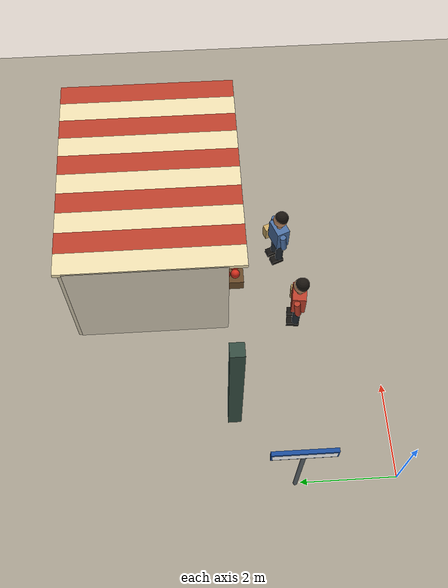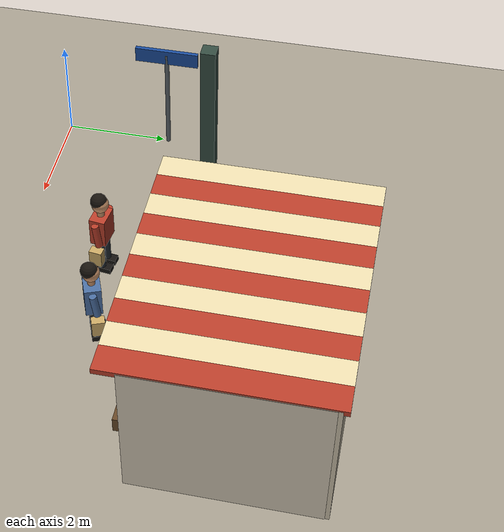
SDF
<sdf version="1.10">
 <world name="swan_market">
  <model name="ground">
   <static>true</static>
   <pose>15 0 -0.1 0 0 0</pose>
   <link name="body">
    <collision name="box_collision"><geometry><box><size>46 24 0.2</size></box></geometry></collision>
    <visual name="box_visual">
     <geometry><box><size>46 24 0.2</size></box></geometry>
     <material><ambient>0.64 0.61 0.55 1</ambient><diffuse>0.64 0.61 0.55 1</diffuse></material>
    </visual>
   </link>
  </model>
  <model name="crosswalk_sign_pole">
   <static>true</static>
   <pose>0 2.1 0 0 0 0</pose>
   <link name="body">
    <collision name="post_collision">
     <pose>0 0 1.1 0 0 0</pose>
     <geometry><cylinder><radius>0.045</radius><length>2.2</length></cylinder></geometry>
    </collision>
    <visual name="post_visual">
     <pose>0 0 1.1 0 0 0</pose>
     <geometry><cylinder><radius>0.045</radius><length>2.2</length></cylinder></geometry>
     <material><ambient>0.35 0.38 0.4 1</ambient><diffuse>0.35 0.38 0.4 1</diffuse></material>
    </visual>
   </link>
  </model>
  <model name="crosswalk_sign_back">
   <static>true</static>
   <pose>0 2.1 2.15 0 0 0</pose>
   <link name="body">
    <collision name="box_collision"><geometry><box><size>0.08 1.25 0.3</size></box></geometry></collision>
    <visual name="box_visual">
     <geometry><box><size>0.08 1.25 0.3</size></box></geometry>
     <material><ambient>0.1 0.29 0.6 1</ambient><diffuse>0.1 0.29 0.6 1</diffuse></material>
    </visual>
   </link>
  </model>
  <model name="sign_crosswalk">
   <static>true</static>
   <pose>-0.048 2.1 2.15 0 0 -1.5708</pose>
   <link name="body">
    <visual name="lettering">
     <geometry>
      <mesh>
       <uri>model://swan_market_assets/meshes/crosswalk.dae</uri>
       <scale>1.2 1 0.22499999999999998</scale>
      </mesh>
     </geometry>
     <material>
      <ambient>1 1 1 1</ambient>
      <diffuse>1 1 1 1</diffuse>
      <emissive>0 0 0 1</emissive>
      <pbr>
       <metal>
        <albedo_map>model://swan_market_assets/materials/textures/crosswalk.png</albedo_map>
        <metalness>0</metalness>
        <roughness>1</roughness>
       </metal>
      </pbr>
     </material>
    </visual>
   </link>
  </model>
  <model name="entrance_post_1">
   <static>true</static>
   <pose>1.5 3.25 1.8 0 0 0</pose>
   <link name="body">
    <collision name="box_collision"><geometry><box><size>0.28 0.28 3.6</size></box></geometry></collision>
    <visual name="box_visual">
     <geometry><box><size>0.28 0.28 3.6</size></box></geometry>
     <material><ambient>0.2 0.29 0.25 1</ambient><diffuse>0.2 0.29 0.25 1</diffuse></material>
    </visual>
   </link>
  </model>
  <model name="stall_00">
   <static>true</static>
   <pose>6 4.8968 0 0 0 0</pose>
   <link name="body">
    <collision name="rear_collision">
     <pose>0 1.65 1.4 0 0 0</pose>
     <geometry><box><size>4.8 0.15 2.8</size></box></geometry>
    </collision>
    <visual name="rear_visual">
     <pose>0 1.65 1.4 0 0 0</pose>
     <geometry><box><size>4.8 0.15 2.8</size></box></geometry>
     <material><ambient>0.78 0.74 0.65 1</ambient><diffuse>0.78 0.74 0.65 1</diffuse></material>
    </visual>
    <collision name="side_-2.35_collision">
     <pose>-2.35 0 1.4 0 0 0</pose>
     <geometry><box><size>0.12 3.3 2.8</size></box></geometry>
    </collision>
    <visual name="side_-2.35_visual">
     <pose>-2.35 0 1.4 0 0 0</pose>
     <geometry><box><size>0.12 3.3 2.8</size></box></geometry>
     <material><ambient>0.81 0.77 0.69 1</ambient><diffuse>0.81 0.77 0.69 1</diffuse></material>
    </visual>
    <collision name="side_2.35_collision">
     <pose>2.35 0 1.4 0 0 0</pose>
     <geometry><box><size>0.12 3.3 2.8</size></box></geometry>
    </collision>
    <visual name="side_2.35_visual">
     <pose>2.35 0 1.4 0 0 0</pose>
     <geometry><box><size>0.12 3.3 2.8</size></box></geometry>
     <material><ambient>0.81 0.77 0.69 1</ambient><diffuse>0.81 0.77 0.69 1</diffuse></material>
    </visual>
    <collision name="counter_collision">
     <pose>0 -1.22 0.4 0 0 0</pose>
     <geometry><box><size>3.5 0.85 0.8</size></box></geometry>
    </collision>
    <visual name="counter_visual">
     <pose>0 -1.22 0.4 0 0 0</pose>
     <geometry><box><size>3.5 0.85 0.8</size></box></geometry>
     <material><ambient>0.47 0.32 0.21 1</ambient><diffuse>0.47 0.32 0.21 1</diffuse></material>
    </visual>
    <collision name="counter_top_collision">
     <pose>0 -1.22 0.83 0 0 0</pose>
     <geometry><box><size>3.6 0.95 0.06</size></box></geometry>
    </collision>
    <visual name="counter_top_visual">
     <pose>0 -1.22 0.83 0 0 0</pose>
     <geometry><box><size>3.6 0.95 0.06</size></box></geometry>
     <material><ambient>0.86 0.77 0.59 1</ambient><diffuse>0.86 0.77 0.59 1</diffuse></material>
    </visual>
    <collision name="awning_0_collision">
     <pose>-2.16 -0.1 2.78 0 0 0</pose>
     <geometry><box><size>0.48 3.85 0.1</size></box></geometry>
    </collision>
    <visual name="awning_0_visual">
     <pose>-2.16 -0.1 2.78 0 0 0</pose>
     <geometry><box><size>0.48 3.85 0.1</size></box></geometry>
     <material><ambient>0.92 0.86 0.68 1</ambient><diffuse>0.92 0.86 0.68 1</diffuse></material>
    </visual>
    <collision name="awning_1_collision">
     <pose>-1.68 -0.1 2.78 0 0 0</pose>
     <geometry><box><size>0.48 3.85 0.1</size></box></geometry>
    </collision>
    <visual name="awning_1_visual">
     <pose>-1.68 -0.1 2.78 0 0 0</pose>
     <geometry><box><size>0.48 3.85 0.1</size></box></geometry>
     <material><ambient>0.72 0.24 0.16 1</ambient><diffuse>0.72 0.24 0.16 1</diffuse></material>
    </visual>
    <collision name="awning_2_collision">
     <pose>-1.2 -0.1 2.78 0 0 0</pose>
     <geometry><box><size>0.48 3.85 0.1</size></box></geometry>
    </collision>
    <visual name="awning_2_visual">
     <pose>-1.2 -0.1 2.78 0 0 0</pose>
     <geometry><box><size>0.48 3.85 0.1</size></box></geometry>
     <material><ambient>0.92 0.86 0.68 1</ambient><diffuse>0.92 0.86 0.68 1</diffuse></material>
    </visual>
    <collision name="awning_3_collision">
     <pose>-0.72 -0.1 2.78 0 0 0</pose>
     <geometry><box><size>0.48 3.85 0.1</size></box></geometry>
    </collision>
    <visual name="awning_3_visual">
     <pose>-0.72 -0.1 2.78 0 0 0</pose>
     <geometry><box><size>0.48 3.85 0.1</size></box></geometry>
     <material><ambient>0.72 0.24 0.16 1</ambient><diffuse>0.72 0.24 0.16 1</diffuse></material>
    </visual>
    <collision name="awning_4_collision">
     <pose>-0.24 -0.1 2.78 0 0 0</pose>
     <geometry><box><size>0.48 3.85 0.1</size></box></geometry>
    </collision>
    <visual name="awning_4_visual">
     <pose>-0.24 -0.1 2.78 0 0 0</pose>
     <geometry><box><size>0.48 3.85 0.1</size></box></geometry>
     <material><ambient>0.92 0.86 0.68 1</ambient><diffuse>0.92 0.86 0.68 1</diffuse></material>
    </visual>
    <collision name="awning_5_collision">
     <pose>0.24 -0.1 2.78 0 0 0</pose>
     <geometry><box><size>0.48 3.85 0.1</size></box></geometry>
    </collision>
    <visual name="awning_5_visual">
     <pose>0.24 -0.1 2.78 0 0 0</pose>
     <geometry><box><size>0.48 3.85 0.1</size></box></geometry>
     <material><ambient>0.72 0.24 0.16 1</ambient><diffuse>0.72 0.24 0.16 1</diffuse></material>
    </visual>
    <collision name="awning_6_collision">
     <pose>0.72 -0.1 2.78 0 0 0</pose>
     <geometry><box><size>0.48 3.85 0.1</size></box></geometry>
    </collision>
    <visual name="awning_6_visual">
     <pose>0.72 -0.1 2.78 0 0 0</pose>
     <geometry><box><size>0.48 3.85 0.1</size></box></geometry>
     <material><ambient>0.92 0.86 0.68 1</ambient><diffuse>0.92 0.86 0.68 1</diffuse></material>
    </visual>
    <collision name="awning_7_collision">
     <pose>1.2 -0.1 2.78 0 0 0</pose>
     <geometry><box><size>0.48 3.85 0.1</size></box></geometry>
    </collision>
    <visual name="awning_7_visual">
     <pose>1.2 -0.1 2.78 0 0 0</pose>
     <geometry><box><size>0.48 3.85 0.1</size></box></geometry>
     <material><ambient>0.72 0.24 0.16 1</ambient><diffuse>0.72 0.24 0.16 1</diffuse></material>
    </visual>
    <collision name="awning_8_collision">
     <pose>1.68 -0.1 2.78 0 0 0</pose>
     <geometry><box><size>0.48 3.85 0.1</size></box></geometry>
    </collision>
    <visual name="awning_8_visual">
     <pose>1.68 -0.1 2.78 0 0 0</pose>
     <geometry><box><size>0.48 3.85 0.1</size></box></geometry>
     <material><ambient>0.92 0.86 0.68 1</ambient><diffuse>0.92 0.86 0.68 1</diffuse></material>
    </visual>
    <collision name="awning_9_collision">
     <pose>2.16 -0.1 2.78 0 0 0</pose>
     <geometry><box><size>0.48 3.85 0.1</size></box></geometry>
    </collision>
    <visual name="awning_9_visual">
     <pose>2.16 -0.1 2.78 0 0 0</pose>
     <geometry><box><size>0.48 3.85 0.1</size></box></geometry>
     <material><ambient>0.72 0.24 0.16 1</ambient><diffuse>0.72 0.24 0.16 1</diffuse></material>
    </visual>
    <collision name="crate_-1_collision">
     <pose>-1.04 -1.77 0.15 0 0 0</pose>
     <geometry><box><size>0.78 0.6 0.3</size></box></geometry>
    </collision>
    <visual name="crate_-1_visual">
     <pose>-1.04 -1.77 0.15 0 0 0</pose>
     <geometry><box><size>0.78 0.6 0.3</size></box></geometry>
     <material><ambient>0.4 0.28 0.15 1</ambient><diffuse>0.4 0.28 0.15 1</diffuse></material>
    </visual>
    <visual name="produce_-1_0_visual">
     <pose>-1.25 -1.88 0.39 0 0 0</pose>
     <geometry><sphere><radius>0.105</radius></sphere></geometry>
     <material><ambient>0.84 0.18 0.11 1</ambient><diffuse>0.84 0.18 0.11 1</diffuse></material>
    </visual>
    <visual name="produce_-1_1_visual">
     <pose>-1.04 -1.88 0.39 0 0 0</pose>
     <geometry><sphere><radius>0.105</radius></sphere></geometry>
     <material><ambient>0.84 0.18 0.11 1</ambient><diffuse>0.84 0.18 0.11 1</diffuse></material>
    </visual>
    <visual name="produce_-1_2_visual">
     <pose>-0.83 -1.88 0.39 0 0 0</pose>
     <geometry><sphere><radius>0.105</radius></sphere></geometry>
     <material><ambient>0.84 0.18 0.11 1</ambient><diffuse>0.84 0.18 0.11 1</diffuse></material>
    </visual>
    <visual name="produce_-1_3_visual">
     <pose>-1.25 -1.66 0.39 0 0 0</pose>
     <geometry><sphere><radius>0.105</radius></sphere></geometry>
     <material><ambient>0.84 0.18 0.11 1</ambient><diffuse>0.84 0.18 0.11 1</diffuse></material>
    </visual>
    <visual name="produce_-1_4_visual">
     <pose>-1.04 -1.66 0.39 0 0 0</pose>
     <geometry><sphere><radius>0.105</radius></sphere></geometry>
     <material><ambient>0.84 0.18 0.11 1</ambient><diffuse>0.84 0.18 0.11 1</diffuse></material>
    </visual>
    <visual name="produce_-1_5_visual">
     <pose>-0.83 -1.66 0.39 0 0 0</pose>
     <geometry><sphere><radius>0.105</radius></sphere></geometry>
     <material><ambient>0.84 0.18 0.11 1</ambient><diffuse>0.84 0.18 0.11 1</diffuse></material>
    </visual>
    <collision name="crate_0_collision">
     <pose>0 -1.77 0.15 0 0 0</pose>
     <geometry><box><size>0.78 0.6 0.3</size></box></geometry>
    </collision>
    <visual name="crate_0_visual">
     <pose>0 -1.77 0.15 0 0 0</pose>
     <geometry><box><size>0.78 0.6 0.3</size></box></geometry>
     <material><ambient>0.4 0.28 0.15 1</ambient><diffuse>0.4 0.28 0.15 1</diffuse></material>
    </visual>
    <visual name="produce_0_0_visual">
     <pose>-0.21 -1.88 0.39 0 0 0</pose>
     <geometry><sphere><radius>0.105</radius></sphere></geometry>
     <material><ambient>0.84 0.18 0.11 1</ambient><diffuse>0.84 0.18 0.11 1</diffuse></material>
    </visual>
    <visual name="produce_0_1_visual">
     <pose>0 -1.88 0.39 0 0 0</pose>
     <geometry><sphere><radius>0.105</radius></sphere></geometry>
     <material><ambient>0.84 0.18 0.11 1</ambient><diffuse>0.84 0.18 0.11 1</diffuse></material>
    </visual>
    <visual name="produce_0_2_visual">
     <pose>0.21 -1.88 0.39 0 0 0</pose>
     <geometry><sphere><radius>0.105</radius></sphere></geometry>
     <material><ambient>0.84 0.18 0.11 1</ambient><diffuse>0.84 0.18 0.11 1</diffuse></material>
    </visual>
    <visual name="produce_0_3_visual">
     <pose>-0.21 -1.66 0.39 0 0 0</pose>
     <geometry><sphere><radius>0.105</radius></sphere></geometry>
     <material><ambient>0.84 0.18 0.11 1</ambient><diffuse>0.84 0.18 0.11 1</diffuse></material>
    </visual>
    <visual name="produce_0_4_visual">
     <pose>0 -1.66 0.39 0 0 0</pose>
     <geometry><sphere><radius>0.105</radius></sphere></geometry>
     <material><ambient>0.84 0.18 0.11 1</ambient><diffuse>0.84 0.18 0.11 1</diffuse></material>
    </visual>
    <visual name="produce_0_5_visual">
     <pose>0.21 -1.66 0.39 0 0 0</pose>
     <geometry><sphere><radius>0.105</radius></sphere></geometry>
     <material><ambient>0.84 0.18 0.11 1</ambient><diffuse>0.84 0.18 0.11 1</diffuse></material>
    </visual>
    <collision name="crate_1_collision">
     <pose>1.04 -1.77 0.15 0 0 0</pose>
     <geometry><box><size>0.78 0.6 0.3</size></box></geometry>
    </collision>
    <visual name="crate_1_visual">
     <pose>1.04 -1.77 0.15 0 0 0</pose>
     <geometry><box><size>0.78 0.6 0.3</size></box></geometry>
     <material><ambient>0.4 0.28 0.15 1</ambient><diffuse>0.4 0.28 0.15 1</diffuse></material>
    </visual>
    <visual name="produce_1_0_visual">
     <pose>0.83 -1.88 0.39 0 0 0</pose>
     <geometry><sphere><radius>0.105</radius></sphere></geometry>
     <material><ambient>0.84 0.18 0.11 1</ambient><diffuse>0.84 0.18 0.11 1</diffuse></material>
    </visual>
    <visual name="produce_1_1_visual">
     <pose>1.04 -1.88 0.39 0 0 0</pose>
     <geometry><sphere><radius>0.105</radius></sphere></geometry>
     <material><ambient>0.84 0.18 0.11 1</ambient><diffuse>0.84 0.18 0.11 1</diffuse></material>
    </visual>
    <visual name="produce_1_2_visual">
     <pose>1.25 -1.88 0.39 0 0 0</pose>
     <geometry><sphere><radius>0.105</radius></sphere></geometry>
     <material><ambient>0.84 0.18 0.11 1</ambient><diffuse>0.84 0.18 0.11 1</diffuse></material>
    </visual>
    <visual name="produce_1_3_visual">
     <pose>0.83 -1.66 0.39 0 0 0</pose>
     <geometry><sphere><radius>0.105</radius></sphere></geometry>
     <material><ambient>0.84 0.18 0.11 1</ambient><diffuse>0.84 0.18 0.11 1</diffuse></material>
    </visual>
    <visual name="produce_1_4_visual">
     <pose>1.04 -1.66 0.39 0 0 0</pose>
     <geometry><sphere><radius>0.105</radius></sphere></geometry>
     <material><ambient>0.84 0.18 0.11 1</ambient><diffuse>0.84 0.18 0.11 1</diffuse></material>
    </visual>
    <visual name="produce_1_5_visual">
     <pose>1.25 -1.66 0.39 0 0 0</pose>
     <geometry><sphere><radius>0.105</radius></sphere></geometry>
     <material><ambient>0.84 0.18 0.11 1</ambient><diffuse>0.84 0.18 0.11 1</diffuse></material>
    </visual>
   </link>
  </model>
  <model name="shopper_fruit">
   <static>true</static>
   <pose>5.4053 1.9859 0 0 0 1.9395</pose>
   <link name="body">
    <collision name="leg_-1_collision">
     <pose>0 -0.12 0.4 0 0 0</pose>
     <geometry><cylinder><radius>0.085</radius><length>0.68</length></cylinder></geometry>
    </collision>
    <visual name="leg_-1_visual">
     <pose>0 -0.12 0.4 0 0 0</pose>
     <geometry><cylinder><radius>0.085</radius><length>0.68</length></cylinder></geometry>
     <material><ambient>0.12 0.15 0.18 1</ambient><diffuse>0.12 0.15 0.18 1</diffuse></material>
    </visual>
    <collision name="shoe_-1_collision">
     <pose>0.06 -0.12 0.055 0 0 0</pose>
     <geometry><box><size>0.28 0.17 0.11</size></box></geometry>
    </collision>
    <visual name="shoe_-1_visual">
     <pose>0.06 -0.12 0.055 0 0 0</pose>
     <geometry><box><size>0.28 0.17 0.11</size></box></geometry>
     <material><ambient>0.08 0.07 0.06 1</ambient><diffuse>0.08 0.07 0.06 1</diffuse></material>
    </visual>
    <collision name="arm_-1_collision">
     <pose>0.02 -0.27 1.02 0 -0.12 0</pose>
     <geometry><cylinder><radius>0.068</radius><length>0.48</length></cylinder></geometry>
    </collision>
    <visual name="arm_-1_visual">
     <pose>0.02 -0.27 1.02 0 -0.12 0</pose>
     <geometry><cylinder><radius>0.068</radius><length>0.48</length></cylinder></geometry>
     <material><ambient>0.29 0.43 0.63 1</ambient><diffuse>0.29 0.43 0.63 1</diffuse></material>
    </visual>
    <collision name="leg_1_collision">
     <pose>0 0.12 0.4 0 0 0</pose>
     <geometry><cylinder><radius>0.085</radius><length>0.68</length></cylinder></geometry>
    </collision>
    <visual name="leg_1_visual">
     <pose>0 0.12 0.4 0 0 0</pose>
     <geometry><cylinder><radius>0.085</radius><length>0.68</length></cylinder></geometry>
     <material><ambient>0.12 0.15 0.18 1</ambient><diffuse>0.12 0.15 0.18 1</diffuse></material>
    </visual>
    <collision name="shoe_1_collision">
     <pose>0.06 0.12 0.055 0 0 0</pose>
     <geometry><box><size>0.28 0.17 0.11</size></box></geometry>
    </collision>
    <visual name="shoe_1_visual">
     <pose>0.06 0.12 0.055 0 0 0</pose>
     <geometry><box><size>0.28 0.17 0.11</size></box></geometry>
     <material><ambient>0.08 0.07 0.06 1</ambient><diffuse>0.08 0.07 0.06 1</diffuse></material>
    </visual>
    <collision name="arm_1_collision">
     <pose>0.02 0.27 1.02 0 0.12 0</pose>
     <geometry><cylinder><radius>0.068</radius><length>0.48</length></cylinder></geometry>
    </collision>
    <visual name="arm_1_visual">
     <pose>0.02 0.27 1.02 0 0.12 0</pose>
     <geometry><cylinder><radius>0.068</radius><length>0.48</length></cylinder></geometry>
     <material><ambient>0.29 0.43 0.63 1</ambient><diffuse>0.29 0.43 0.63 1</diffuse></material>
    </visual>
    <collision name="torso_collision">
     <pose>0 0 1.02 0 0 0</pose>
     <geometry><box><size>0.3 0.43 0.58</size></box></geometry>
    </collision>
    <visual name="torso_visual">
     <pose>0 0 1.02 0 0 0</pose>
     <geometry><box><size>0.3 0.43 0.58</size></box></geometry>
     <material><ambient>0.29 0.43 0.63 1</ambient><diffuse>0.29 0.43 0.63 1</diffuse></material>
    </visual>
    <visual name="neck_visual">
     <pose>0 0 1.37 0 0 0</pose>
     <geometry><cylinder><radius>0.07</radius><length>0.13</length></cylinder></geometry>
     <material><ambient>0.77 0.56 0.4 1</ambient><diffuse>0.77 0.56 0.4 1</diffuse></material>
    </visual>
    <collision name="head_collision">
     <pose>0 0 1.57 0 0 0</pose>
     <geometry><sphere><radius>0.16</radius></sphere></geometry>
    </collision>
    <visual name="head_visual">
     <pose>0 0 1.57 0 0 0</pose>
     <geometry><sphere><radius>0.16</radius></sphere></geometry>
     <material><ambient>0.77 0.56 0.4 1</ambient><diffuse>0.77 0.56 0.4 1</diffuse></material>
    </visual>
    <visual name="hair_visual">
     <pose>-0.025 0 1.63 0 0 0</pose>
     <geometry><sphere><radius>0.155</radius></sphere></geometry>
     <material><ambient>0.1 0.08 0.06 1</ambient><diffuse>0.1 0.08 0.06 1</diffuse></material>
    </visual>
    <collision name="shopping_bag_collision">
     <pose>0.04 -0.38 0.6 0 0 0</pose>
     <geometry><box><size>0.24 0.17 0.33</size></box></geometry>
    </collision>
    <visual name="shopping_bag_visual">
     <pose>0.04 -0.38 0.6 0 0 0</pose>
     <geometry><box><size>0.24 0.17 0.33</size></box></geometry>
     <material><ambient>0.78 0.65 0.39 1</ambient><diffuse>0.78 0.65 0.39 1</diffuse></material>
    </visual>
   </link>
  </model>
  <model name="vendor_0">
   <static>true</static>
   <pose>4.3962 4.5977 0 0 0 -1.2021</pose>
   <link name="body">
    <collision name="leg_-1_collision">
     <pose>0 -0.12 0.4 0 0 0</pose>
     <geometry><cylinder><radius>0.085</radius><length>0.68</length></cylinder></geometry>
    </collision>
    <visual name="leg_-1_visual">
     <pose>0 -0.12 0.4 0 0 0</pose>
     <geometry><cylinder><radius>0.085</radius><length>0.68</length></cylinder></geometry>
     <material><ambient>0.12 0.15 0.18 1</ambient><diffuse>0.12 0.15 0.18 1</diffuse></material>
    </visual>
    <collision name="shoe_-1_collision">
     <pose>0.06 -0.12 0.055 0 0 0</pose>
     <geometry><box><size>0.28 0.17 0.11</size></box></geometry>
    </collision>
    <visual name="shoe_-1_visual">
     <pose>0.06 -0.12 0.055 0 0 0</pose>
     <geometry><box><size>0.28 0.17 0.11</size></box></geometry>
     <material><ambient>0.08 0.07 0.06 1</ambient><diffuse>0.08 0.07 0.06 1</diffuse></material>
    </visual>
    <collision name="arm_-1_collision">
     <pose>0.02 -0.27 1.02 0 -0.12 0</pose>
     <geometry><cylinder><radius>0.068</radius><length>0.48</length></cylinder></geometry>
    </collision>
    <visual name="arm_-1_visual">
     <pose>0.02 -0.27 1.02 0 -0.12 0</pose>
     <geometry><cylinder><radius>0.068</radius><length>0.48</length></cylinder></geometry>
     <material><ambient>0.79 0.69 0.48 1</ambient><diffuse>0.79 0.69 0.48 1</diffuse></material>
    </visual>
    <collision name="leg_1_collision">
     <pose>0 0.12 0.4 0 0 0</pose>
     <geometry><cylinder><radius>0.085</radius><length>0.68</length></cylinder></geometry>
    </collision>
    <visual name="leg_1_visual">
     <pose>0 0.12 0.4 0 0 0</pose>
     <geometry><cylinder><radius>0.085</radius><length>0.68</length></cylinder></geometry>
     <material><ambient>0.12 0.15 0.18 1</ambient><diffuse>0.12 0.15 0.18 1</diffuse></material>
    </visual>
    <collision name="shoe_1_collision">
     <pose>0.06 0.12 0.055 0 0 0</pose>
     <geometry><box><size>0.28 0.17 0.11</size></box></geometry>
    </collision>
    <visual name="shoe_1_visual">
     <pose>0.06 0.12 0.055 0 0 0</pose>
     <geometry><box><size>0.28 0.17 0.11</size></box></geometry>
     <material><ambient>0.08 0.07 0.06 1</ambient><diffuse>0.08 0.07 0.06 1</diffuse></material>
    </visual>
    <collision name="arm_1_collision">
     <pose>0.02 0.27 1.02 0 0.12 0</pose>
     <geometry><cylinder><radius>0.068</radius><length>0.48</length></cylinder></geometry>
    </collision>
    <visual name="arm_1_visual">
     <pose>0.02 0.27 1.02 0 0.12 0</pose>
     <geometry><cylinder><radius>0.068</radius><length>0.48</length></cylinder></geometry>
     <material><ambient>0.79 0.69 0.48 1</ambient><diffuse>0.79 0.69 0.48 1</diffuse></material>
    </visual>
    <collision name="torso_collision">
     <pose>0 0 1.02 0 0 0</pose>
     <geometry><box><size>0.3 0.43 0.58</size></box></geometry>
    </collision>
    <visual name="torso_visual">
     <pose>0 0 1.02 0 0 0</pose>
     <geometry><box><size>0.3 0.43 0.58</size></box></geometry>
     <material><ambient>0.79 0.69 0.48 1</ambient><diffuse>0.79 0.69 0.48 1</diffuse></material>
    </visual>
    <visual name="neck_visual">
     <pose>0 0 1.37 0 0 0</pose>
     <geometry><cylinder><radius>0.07</radius><length>0.13</length></cylinder></geometry>
     <material><ambient>0.77 0.56 0.4 1</ambient><diffuse>0.77 0.56 0.4 1</diffuse></material>
    </visual>
    <collision name="head_collision">
     <pose>0 0 1.57 0 0 0</pose>
     <geometry><sphere><radius>0.16</radius></sphere></geometry>
    </collision>
    <visual name="head_visual">
     <pose>0 0 1.57 0 0 0</pose>
     <geometry><sphere><radius>0.16</radius></sphere></geometry>
     <material><ambient>0.77 0.56 0.4 1</ambient><diffuse>0.77 0.56 0.4 1</diffuse></material>
    </visual>
    <visual name="hair_visual">
     <pose>-0.025 0 1.63 0 0 0</pose>
     <geometry><sphere><radius>0.155</radius></sphere></geometry>
     <material><ambient>0.1 0.08 0.06 1</ambient><diffuse>0.1 0.08 0.06 1</diffuse></material>
    </visual>
   </link>
  </model>
  <model name="crowd_00">
   <static>true</static>
   <pose>3.7356 1.709 0 0 0 1.4379</pose>
   <link name="body">
    <collision name="leg_-1_collision">
     <pose>0 -0.12 0.4 0 0 0</pose>
     <geometry><cylinder><radius>0.085</radius><length>0.68</length></cylinder></geometry>
    </collision>
    <visual name="leg_-1_visual">
     <pose>0 -0.12 0.4 0 0 0</pose>
     <geometry><cylinder><radius>0.085</radius><length>0.68</length></cylinder></geometry>
     <material><ambient>0.12 0.15 0.18 1</ambient><diffuse>0.12 0.15 0.18 1</diffuse></material>
    </visual>
    <collision name="shoe_-1_collision">
     <pose>0.06 -0.12 0.055 0 0 0</pose>
     <geometry><box><size>0.28 0.17 0.11</size></box></geometry>
    </collision>
    <visual name="shoe_-1_visual">
     <pose>0.06 -0.12 0.055 0 0 0</pose>
     <geometry><box><size>0.28 0.17 0.11</size></box></geometry>
     <material><ambient>0.08 0.07 0.06 1</ambient><diffuse>0.08 0.07 0.06 1</diffuse></material>
    </visual>
    <collision name="arm_-1_collision">
     <pose>0.02 -0.27 1.02 0 -0.12 0</pose>
     <geometry><cylinder><radius>0.068</radius><length>0.48</length></cylinder></geometry>
    </collision>
    <visual name="arm_-1_visual">
     <pose>0.02 -0.27 1.02 0 -0.12 0</pose>
     <geometry><cylinder><radius>0.068</radius><length>0.48</length></cylinder></geometry>
     <material><ambient>0.72 0.24 0.16 1</ambient><diffuse>0.72 0.24 0.16 1</diffuse></material>
    </visual>
    <collision name="leg_1_collision">
     <pose>0 0.12 0.4 0 0 0</pose>
     <geometry><cylinder><radius>0.085</radius><length>0.68</length></cylinder></geometry>
    </collision>
    <visual name="leg_1_visual">
     <pose>0 0.12 0.4 0 0 0</pose>
     <geometry><cylinder><radius>0.085</radius><length>0.68</length></cylinder></geometry>
     <material><ambient>0.12 0.15 0.18 1</ambient><diffuse>0.12 0.15 0.18 1</diffuse></material>
    </visual>
    <collision name="shoe_1_collision">
     <pose>0.06 0.12 0.055 0 0 0</pose>
     <geometry><box><size>0.28 0.17 0.11</size></box></geometry>
    </collision>
    <visual name="shoe_1_visual">
     <pose>0.06 0.12 0.055 0 0 0</pose>
     <geometry><box><size>0.28 0.17 0.11</size></box></geometry>
     <material><ambient>0.08 0.07 0.06 1</ambient><diffuse>0.08 0.07 0.06 1</diffuse></material>
    </visual>
    <collision name="arm_1_collision">
     <pose>0.02 0.27 1.02 0 0.12 0</pose>
     <geometry><cylinder><radius>0.068</radius><length>0.48</length></cylinder></geometry>
    </collision>
    <visual name="arm_1_visual">
     <pose>0.02 0.27 1.02 0 0.12 0</pose>
     <geometry><cylinder><radius>0.068</radius><length>0.48</length></cylinder></geometry>
     <material><ambient>0.72 0.24 0.16 1</ambient><diffuse>0.72 0.24 0.16 1</diffuse></material>
    </visual>
    <collision name="torso_collision">
     <pose>0 0 1.02 0 0 0</pose>
     <geometry><box><size>0.3 0.43 0.58</size></box></geometry>
    </collision>
    <visual name="torso_visual">
     <pose>0 0 1.02 0 0 0</pose>
     <geometry><box><size>0.3 0.43 0.58</size></box></geometry>
     <material><ambient>0.72 0.24 0.16 1</ambient><diffuse>0.72 0.24 0.16 1</diffuse></material>
    </visual>
    <visual name="neck_visual">
     <pose>0 0 1.37 0 0 0</pose>
     <geometry><cylinder><radius>0.07</radius><length>0.13</length></cylinder></geometry>
     <material><ambient>0.77 0.56 0.4 1</ambient><diffuse>0.77 0.56 0.4 1</diffuse></material>
    </visual>
    <collision name="head_collision">
     <pose>0 0 1.57 0 0 0</pose>
     <geometry><sphere><radius>0.16</radius></sphere></geometry>
    </collision>
    <visual name="head_visual">
     <pose>0 0 1.57 0 0 0</pose>
     <geometry><sphere><radius>0.16</radius></sphere></geometry>
     <material><ambient>0.77 0.56 0.4 1</ambient><diffuse>0.77 0.56 0.4 1</diffuse></material>
    </visual>
    <visual name="hair_visual">
     <pose>-0.025 0 1.63 0 0 0</pose>
     <geometry><sphere><radius>0.155</radius></sphere></geometry>
     <material><ambient>0.1 0.08 0.06 1</ambient><diffuse>0.1 0.08 0.06 1</diffuse></material>
    </visual>
    <collision name="shopping_bag_collision">
     <pose>0.04 -0.38 0.6 0 0 0</pose>
     <geometry><box><size>0.24 0.17 0.33</size></box></geometry>
    </collision>
    <visual name="shopping_bag_visual">
     <pose>0.04 -0.38 0.6 0 0 0</pose>
     <geometry><box><size>0.24 0.17 0.33</size></box></geometry>
     <material><ambient>0.78 0.65 0.39 1</ambient><diffuse>0.78 0.65 0.39 1</diffuse></material>
    </visual>
   </link>
  </model>
 </world>
</sdf>
